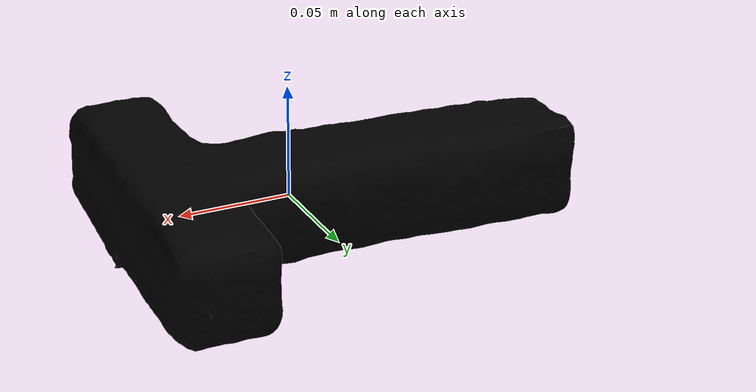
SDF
<?xml version="1.0"?>
<sdf version="1.7" xmlns:drake="https://drake.mit.edu/schemas/drake">
<model name="t_shape">
    <link name="vertical_link">
      <inertial>
        <pose>0 0 0 0 0 0</pose>
        <mass>1</mass>
        <!-- Inertia values were calculated to be consistent with the mass and
             geometry size, assuming a uniform density. -->
        <inertia>
            <ixx>0.003</ixx>
            <iyy>0.003 </iyy>
            <izz>0.006 </izz>
            <ixy>0.0</ixy>
            <ixz>0.0</ixz>
            <iyz>0.0</iyz>
        </inertia>
      </inertial>

      <visual name="vertical_link">
        <pose>0 0 0 0 0 0</pose>
        <geometry>
          <mesh>
            <uri>examples/sampling_c3/script_output/your_mesh_centered.obj</uri>
          </mesh>
        </geometry>
        <material>
          <diffuse>0 0 0 1</diffuse>
        </material>
      </visual>
      <collision name="vertical_link_volume">
        <pose>0 0 0 0 0 0</pose>
            <geometry>
          <mesh>
            <uri>your_mesh_centered.obj</uri>
          </mesh>
        </geometry>
        <drake:proximity_properties>
          <drake:compliant_hydroelastic/>
          <drake:hydroelastic_modulus> 3.0e7 </drake:hydroelastic_modulus>
          <drake:mesh_resolution_hint> 0.18 </drake:mesh_resolution_hint>
          <drake:hunt_crossley_dissipation>10</drake:hunt_crossley_dissipation>
          <drake:mu_dynamic>0.3</drake:mu_dynamic>
        </drake:proximity_properties>
      </collision>
      <collision name="corner_nxynz_">
        <geometry>
          <sphere>
            <radius>0.001</radius>
          </sphere>
        </geometry>
        <drake:proximity_properties>
        <drake:mu_dynamic>0.3</drake:mu_dynamic>
        </drake:proximity_properties>
        <pose> -0.12987524 0.08055564 -0.02471057 0 0 0</pose>
      </collision>
      <collision name="corner_nxnynz">
        <geometry>
          <sphere>
            <radius>0.001</radius>
          </sphere>
        </geometry>
        <drake:proximity_properties>
        <drake:mu_dynamic>0.3</drake:mu_dynamic>
        </drake:proximity_properties>
        <pose> -0.12987524 -0.08647007 -0.02471057 0 0 0</pose>
      </collision>
      <collision name="corner_xynz">
        <geometry>
          <sphere>
            <radius>0.001</radius>
          </sphere>
        </geometry>
        <drake:proximity_properties>
        <drake:mu_dynamic>0.3</drake:mu_dynamic>
        </drake:proximity_properties>
        <pose> 0.08176528 -0.00295721 -0.02471057 0 0 0</pose>
      </collision>
    </link>
  </model>
</sdf>
